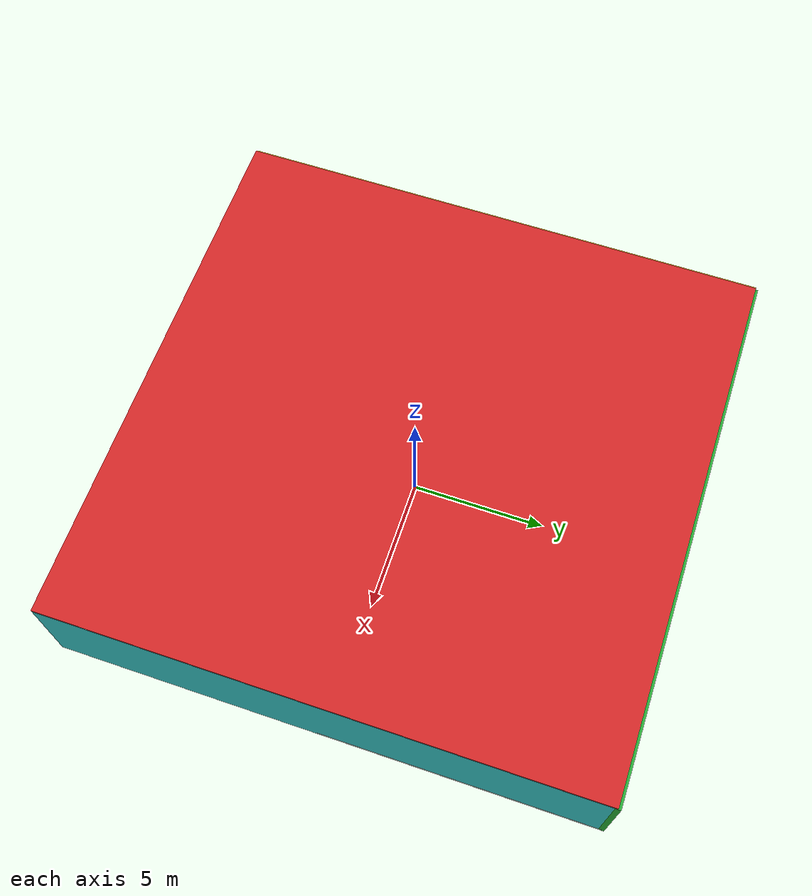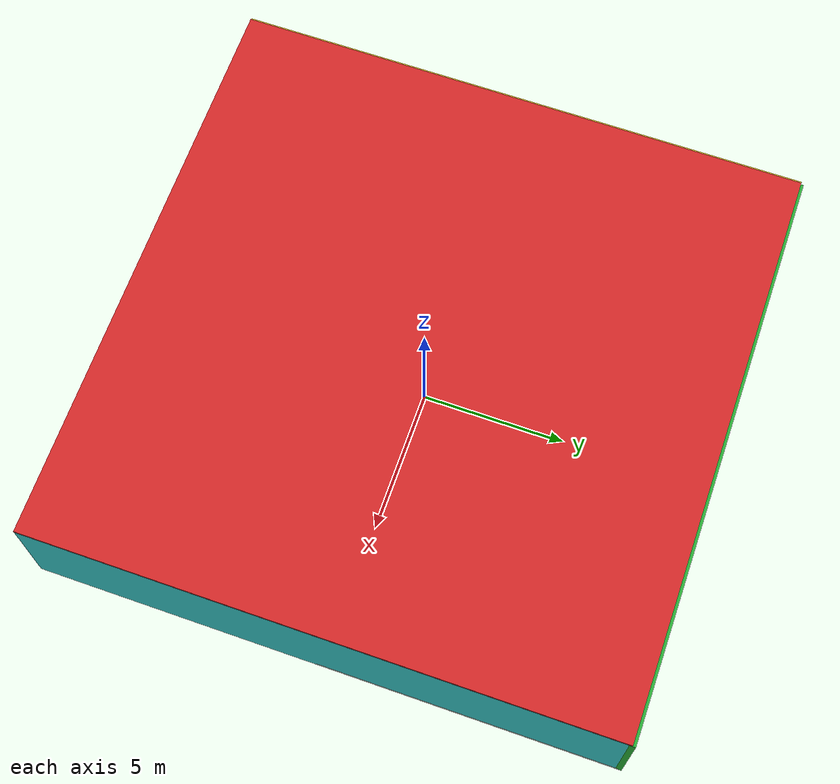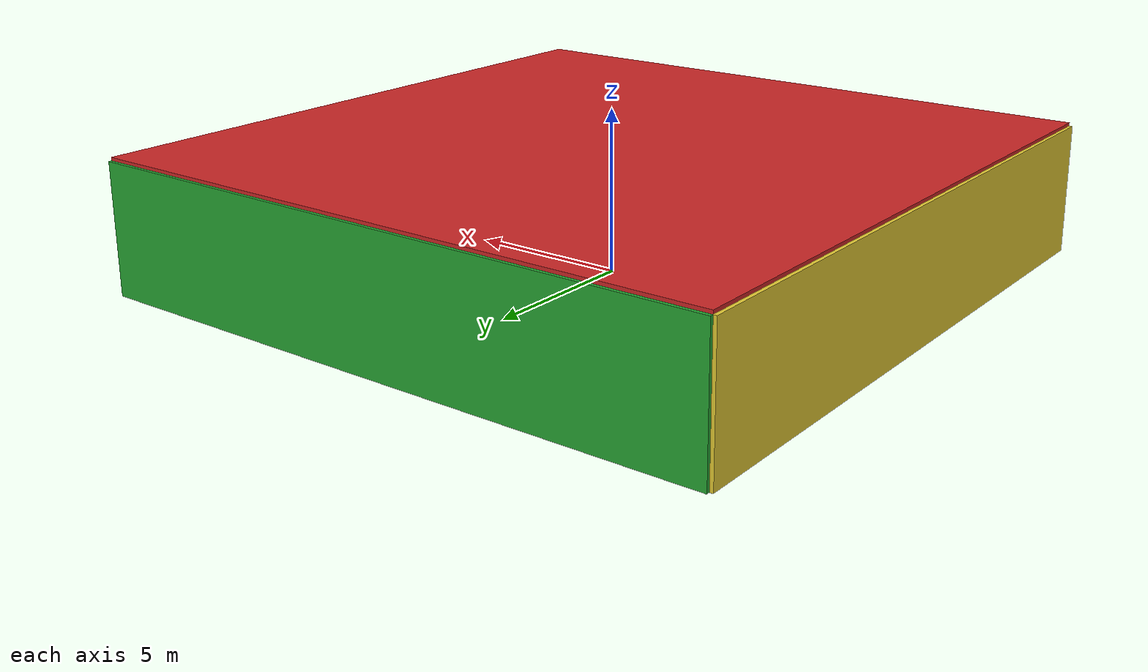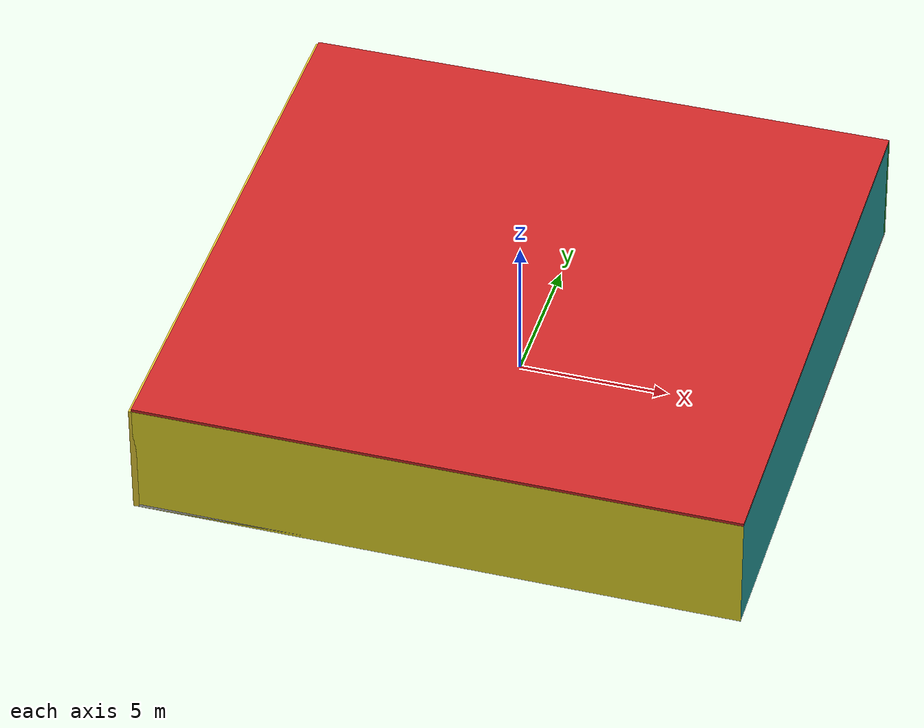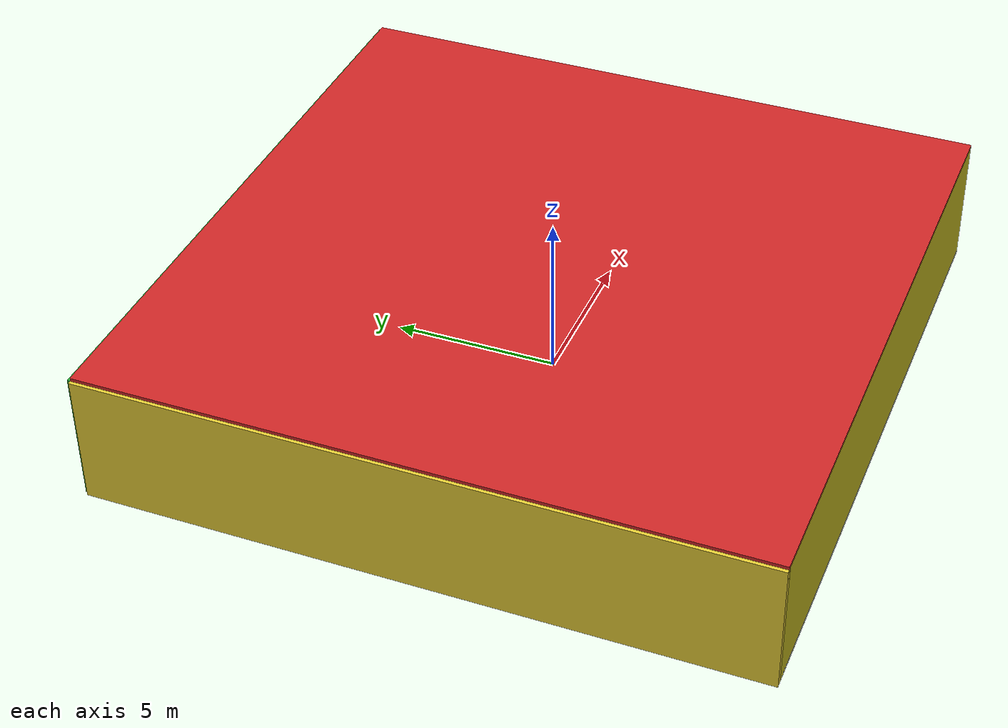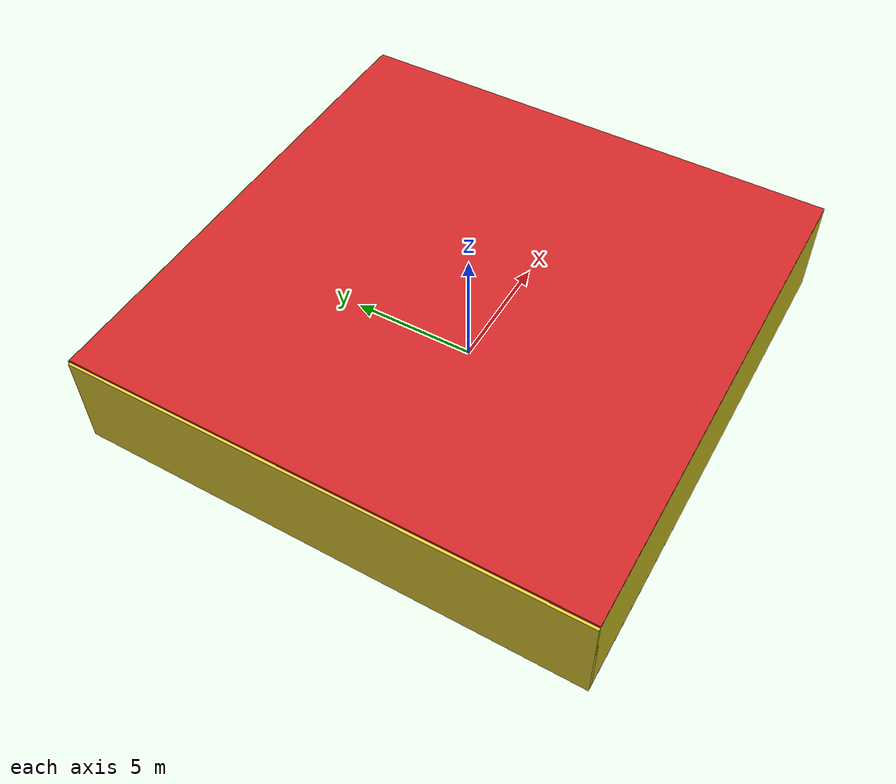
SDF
<sdf version="1.4">
 <world name="default">
  <physics type="ode">
   <max_step_size>0.001</max_step_size>
   <real_time_factor>1</real_time_factor>
   <real_time_update_rate>1000</real_time_update_rate>
   <gravity>0 0 -9.8</gravity>
  </physics>
  <scene><ambient>0.4 0.4 0.4 1</ambient><background>0.7 0.7 0.7 1</background><shadows>1</shadows></scene>
  <model name="Surrounding">
   <static>1</static>
   <link name="Ceiling">
    <collision name="Ceiling_Collision"><geometry><box><size>20 20 0.1</size></box></geometry></collision>
    <visual name="Ceiling_Visual">
     <geometry><box><size>20 20 0.1</size></box></geometry>
     <material>
      <script><uri>file://media/materials/scripts/gazebo.material</uri><name>Gazebo/RedBright</name></script>
     </material>
    </visual>
    <pose>0 0 4.05 0 0 0</pose>
   </link>
   <link name="Wall_South">
    <collision name="Wall_South_Collision">
     <geometry><box><size>20 0 4</size></box></geometry>
     <pose>0 0 2 0 -0 0</pose>
    </collision>
    <visual name="Wall_South_Visual">
     <pose>0 0 2 0 -0 0</pose>
     <geometry><box><size>20 0 4</size></box></geometry>
     <material>
      <script><uri>file://media/materials/scripts/gazebo.material</uri><name>Gazebo/YellowGlow</name></script>
     </material>
    </visual>
    <velocity_decay><linear>0</linear><angular>0</angular></velocity_decay>
    <pose>0 -10 0 0 -0 0</pose>
   </link>
   <link name="Wall_East">
    <collision name="Wall_21_Collision">
     <geometry><box><size>20 0 4</size></box></geometry>
     <pose>0 0 2 0 -0 0</pose>
    </collision>
    <visual name="Wall_21_Visual">
     <pose>0 0 2 0 -0 0</pose>
     <geometry><box><size>20 0 4</size></box></geometry>
     <material>
      <script>
       <uri>file://media/materials/scripts/gazebo.material</uri>
       <name>Gazebo/TurquoiseGlowOutline</name>
      </script>
     </material>
    </visual>
    <velocity_decay><linear>0</linear><angular>0</angular></velocity_decay>
    <pose>10 0 0 0 -0 1.5708</pose>
   </link>
   <link name="Wall_North">
    <collision name="Wall_22_Collision">
     <geometry><box><size>20 0.2 4</size></box></geometry>
     <pose>0 0 2 0 -0 0</pose>
    </collision>
    <visual name="Wall_22_Visual">
     <pose>0 0 2 0 -0 0</pose>
     <geometry><box><size>20 0.2 4</size></box></geometry>
     <material>
      <script><uri>file://media/materials/scripts/gazebo.material</uri><name>Gazebo/GreenGlow</name></script>
     </material>
    </visual>
    <velocity_decay><linear>0</linear><angular>0</angular></velocity_decay>
    <pose>0 10 0 0 -0 0</pose>
   </link>
   <link name="Wall_West">
    <collision name="Wall_23_Collision">
     <geometry><box><size>20 0.2 4</size></box></geometry>
     <pose>0 0 2 0 -0 0</pose>
    </collision>
    <visual name="Wall_23_Visual">
     <pose>0 0 2 0 -0 0</pose>
     <geometry><box><size>20 0.2 4</size></box></geometry>
     <material>
      <script><uri>file://media/materials/scripts/gazebo.material</uri><name>Gazebo/ZincYellow</name></script>
     </material>
    </visual>
    <velocity_decay><linear>0</linear><angular>0</angular></velocity_decay>
    <pose>-10 0 0 0 0 -1.5708</pose>
   </link>
   <link name="Ground_link">
    <collision name="collision">
     <pose>0 0 .05 0 -0 0</pose>
     <geometry><box><size>20 20 0.1</size></box></geometry>
    </collision>
    <visual name="visual">
     <pose>0 0 .05 0 -0 0</pose>
     <geometry><box><size>20 20 0.1</size></box></geometry>
     <material>
      <script><uri>file://media/materials/scripts/gazebo.material</uri><name>Gazebo/CeilingTiled</name></script>
     </material>
    </visual>
   </link>
   <static>1</static>
  </model>
  <spherical_coordinates>
   <surface_model>EARTH_WGS84</surface_model>
   <latitude_deg>0</latitude_deg>
   <longitude_deg>0</longitude_deg>
   <elevation>0</elevation>
   <heading_deg>0</heading_deg>
  </spherical_coordinates>
  <light name="lightball_0" type="diffuse">
   <diffuse>0.8 0.8 0.8 1</diffuse>
   <specular>0.2 0.2 0.2 1</specular>
   <attenuation>
    <range>100</range>
    <constant>0.7</constant>
    <linear>0.01</linear>
    <quadratic>0.001</quadratic>
   </attenuation>
   <direction>-0.5 0.1 -0.9</direction>
   <pose>8.88024452337 1.88795448479 2.39265578732 0 0 0</pose>
  </light>
  <light name="lightball_1" type="diffuse">
   <diffuse>0.8 0.8 0.8 1</diffuse>
   <specular>0.2 0.2 0.2 1</specular>
   <attenuation>
    <range>100</range>
    <constant>0.7</constant>
    <linear>0.01</linear>
    <quadratic>0.001</quadratic>
   </attenuation>
   <direction>-0.5 0.1 -0.9</direction>
   <pose>9.61584369636 8.09053197251 2.72835953635 0 0 0</pose>
  </light>
  <light name="lightball_2" type="diffuse">
   <diffuse>0.8 0.8 0.8 1</diffuse>
   <specular>0.2 0.2 0.2 1</specular>
   <attenuation>
    <range>100</range>
    <constant>0.7</constant>
    <linear>0.01</linear>
    <quadratic>0.001</quadratic>
   </attenuation>
   <direction>-0.5 0.1 -0.9</direction>
   <pose>-4.00501666634 0.703869233988 2.05144152462 0 0 0</pose>
  </light>
  <light name="lightball_3" type="diffuse">
   <diffuse>0.8 0.8 0.8 1</diffuse>
   <specular>0.2 0.2 0.2 1</specular>
   <attenuation>
    <range>100</range>
    <constant>0.7</constant>
    <linear>0.01</linear>
    <quadratic>0.001</quadratic>
   </attenuation>
   <direction>-0.5 0.1 -0.9</direction>
   <pose>-6.81965604919 -7.78637333184 1.56100032315 0 0 0</pose>
  </light>
  <light name="lightball_4" type="diffuse">
   <diffuse>0.8 0.8 0.8 1</diffuse>
   <specular>0.2 0.2 0.2 1</specular>
   <attenuation>
    <range>100</range>
    <constant>0.7</constant>
    <linear>0.01</linear>
    <quadratic>0.001</quadratic>
   </attenuation>
   <direction>-0.5 0.1 -0.9</direction>
   <pose>3.06915246463 -7.42477642773 2.84463827059 0 0 0</pose>
  </light>
  <light name="lightball_5" type="diffuse">
   <diffuse>0.8 0.8 0.8 1</diffuse>
   <specular>0.2 0.2 0.2 1</specular>
   <attenuation>
    <range>100</range>
    <constant>0.7</constant>
    <linear>0.01</linear>
    <quadratic>0.001</quadratic>
   </attenuation>
   <direction>-0.5 0.1 -0.9</direction>
   <pose>-5.69438122697 8.45867067328 2.17454068399 0 0 0</pose>
  </light>
  <light name="lightball_6" type="diffuse">
   <diffuse>0.8 0.8 0.8 1</diffuse>
   <specular>0.2 0.2 0.2 1</specular>
   <attenuation>
    <range>100</range>
    <constant>0.7</constant>
    <linear>0.01</linear>
    <quadratic>0.001</quadratic>
   </attenuation>
   <direction>-0.5 0.1 -0.9</direction>
   <pose>1.46943220548 6.40467224475 1.86830493621 0 0 0</pose>
  </light>
  <include>
   <uri>model://textured_shapes</uri>
   <pose>-4.5607429131 5.49437711645 0 0 0 1.23963770299</pose>
  </include>
  <include><uri>model://cabinet</uri><pose>4.4488021629 -4.10053381811 0 0 0 2.66696678689</pose></include>
  <include>
   <uri>model://textured_shapes</uri>
   <pose>5.52110189831 3.9796394863 0 0 0 0.836259127296</pose>
  </include>
  <include>
   <uri>model://robocup_3Dsim_goal</uri>
   <pose>4.04649044575 7.05992649139 0 0 0 1.10381612073</pose>
  </include>
  <include><uri>model://table</uri><pose>7.49608017499 4.58417848881 0 0 0 2.25553514125</pose></include>
 </world>
</sdf>

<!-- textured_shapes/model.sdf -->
<sdf version="1.6">
  <model name="textured_shapes">
    <pose>0 0 0.5 0 0 0</pose>
    <link name="box">
      <pose>0 -1.5 0 0 0 0</pose>
      <collision name="collision">
        <geometry>
          <box>
            <size>1 1 1</size>
          </box>
        </geometry>
      </collision>
      <visual name="visual">
        <geometry>
          <box>
            <size>1 1 1</size>
          </box>
        </geometry>
        <material>
          <script>
            <uri>model://../model_source/models/textured_shapes/materials/scripts</uri>
            <uri>model://../model_source/models/textured_shapes/materials/textures</uri>
            <name>TexturedShape/Squares</name>
          </script>
        </material>
      </visual>
    </link>
    <link name="sphere">
      <collision name="collision">
        <geometry>
          <sphere>
            <radius>0.5</radius>
          </sphere>
        </geometry>
      </collision>
      <visual name="visual">
        <geometry>
          <sphere>
            <radius>0.5</radius>
          </sphere>
        </geometry>
        <material>
          <script>
            <uri>model://../model_source/models/textured_shapes/materials/scripts</uri>
            <uri>model://../model_source/models/textured_shapes/materials/textures</uri>
            <name>TexturedShape/Squares</name>
          </script>
        </material>
      </visual>
    </link>
    <link name="cylinder">
      <pose>0 1.5 0 0 0 0</pose>
      <collision name="collision">
        <geometry>
          <cylinder>
            <radius>0.5</radius>
            <length>1</length>
          </cylinder>
        </geometry>
      </collision>
      <visual name="visual">
        <geometry>
          <cylinder>
            <radius>0.5</radius>
            <length>1</length>
          </cylinder>
        </geometry>
        <material>
          <script>
            <uri>model://../model_source/models/textured_shapes/materials/scripts</uri>
            <uri>model://../model_source/models/textured_shapes/materials/textures</uri>
            <name>TexturedShape/Squares</name>
          </script>
        </material>
      </visual>
    </link>
  </model>
</sdf>

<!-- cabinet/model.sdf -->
<sdf version="1.5">
  <model name="cabinet">
    <static>true</static>
    <link name="cabinet_bottom_plate">
      <inertial>
        <pose>0 0 -1 0 0 0</pose>
        <inertia>
          <ixx>2.050000</ixx>
          <ixy>0</ixy>
          <ixz>0</ixz>
          <iyy>2.050000</iyy>
          <iyz>0</iyz>
          <izz>2.050000</izz>
        </inertia>
        <mass>25.000000</mass>
      </inertial>
      <collision name="cabinet_bottom_plate_geom">
        <pose>0 0 0.010000 0 0 0</pose>
        <geometry>
          <box>
            <size>0.450000 0.450000 0.020000</size>
          </box>
        </geometry>
      </collision>
      <visual name="cabinet_bottom_plate_geom_visual">
        <pose>0 0 0.010000 0 0 0</pose>
        <geometry>
          <box>
            <size>0.450000 0.450000 0.020000</size>
          </box>
        </geometry>
        <material>
          <script>
            <uri>model://media/materials/scripts/gazebo.material</uri>
            <name>Gazebo/Wood</name>
          </script>
        </material>
      </visual>
      <collision name="cabinet_bottom_plate_geom_cabinet_back_plate">
        <pose>0.235000 0 0.510000 0 0 0</pose>
        <geometry>
          <box>
            <size>0.020000 0.450000 1.020000</size>
          </box>
        </geometry>
      </collision>
      <visual name="cabinet_bottom_plate_geom_cabinet_back_plate_visual">
        <pose>0.235000 0 0.510000 0 0 0</pose>
        <geometry>
          <box>
            <size>0.020000 0.450000 1.020000</size>
          </box>
        </geometry>
        <material>
          <script>
            <uri>model://media/materials/scripts/gazebo.material</uri>
            <name>Gazebo/Wood</name>
          </script>
        </material>
      </visual>
      <collision name="cabinet_bottom_plate_geom_cabinet_left_plate">
        <pose>0 0.235000 0.510000 0 0 0</pose>
        <geometry>
          <box>
            <size>0.450000 0.020000 1.020000</size>
          </box>
        </geometry>
      </collision>
      <visual name="cabinet_bottom_plate_geom_cabinet_left_plate_visual">
        <pose>0 0.235000 0.510000 0 0 0</pose>
        <geometry>
          <box>
            <size>0.450000 0.020000 1.020000</size>
          </box>
        </geometry>
        <material>
          <script>
            <uri>model://media/materials/scripts/gazebo.material</uri>
            <name>Gazebo/Wood</name>
          </script>
        </material>
      </visual>
      <collision name="cabinet_bottom_plate_geom_cabinet_middle_plate">
        <pose>0 0 0.510000 0 0 0</pose>
        <geometry>
          <box>
            <size>0.450000 0.450000 0.020000</size>
          </box>
        </geometry>
      </collision>
      <visual name="cabinet_bottom_plate_geom_cabinet_middle_plate_visual">
        <pose>0 0 0.510000 0 0 0</pose>
        <geometry>
          <box>
            <size>0.450000 0.450000 0.020000</size>
          </box>
        </geometry>
        <material>
          <script>
            <uri>model://media/materials/scripts/gazebo.material</uri>
            <name>Gazebo/Wood</name>
          </script>
        </material>
      </visual>
      <collision name="cabinet_bottom_plate_geom_cabinet_right_plate">
        <pose>0 -0.235000 0.510000 0 0 0</pose>
        <geometry>
          <box>
            <size>0.450000 0.020000 1.020000</size>
          </box>
        </geometry>
      </collision>
      <visual name="cabinet_bottom_plate_geom_cabinet_right_plate_visual">
        <pose>0 -0.235000 0.510000 0 0 0</pose>
        <geometry>
          <box>
            <size>0.450000 0.020000 1.020000</size>
          </box>
        </geometry>
        <material>
          <script>
            <uri>model://media/materials/scripts/gazebo.material</uri>
            <name>Gazebo/Wood</name>
          </script>
        </material>
      </visual>
      <collision name="cabinet_bottom_plate_geom_cabinet_top_plate">
        <pose>0 0 1.010000 0 0 0</pose>
        <geometry>
          <box>
            <size>0.450000 0.450000 0.020000</size>
          </box>
        </geometry>
      </collision>
      <visual name="cabinet_bottom_plate_geom_cabinet_top_plate_visual">
        <pose>0 0 1.010000 0 0 0</pose>
        <geometry>
          <box>
            <size>0.450000 0.450000 0.020000</size>
          </box>
        </geometry>
        <material>
          <script>
            <uri>model://media/materials/scripts/gazebo.material</uri>
            <name>Gazebo/Wood</name>
          </script>
        </material>
      </visual>
    </link>
  </model>
</sdf>

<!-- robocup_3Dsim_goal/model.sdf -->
<sdf version="1.5">
  <model name="robocup_3d_goal">
    <static>true</static>
    <link name="left_post">
      <pose>0 1.05 0.45 0 0 0</pose>
      <collision name="collision">
        <geometry>
          <cylinder>
            <radius>0.05</radius>
            <length>0.9</length>
          </cylinder>
        </geometry>
      </collision>
      <visual name="visual">
        <geometry>
          <cylinder>
            <radius>0.05</radius>
            <length>0.9</length>
          </cylinder>
        </geometry>
        <material>
          <script>
            <uri>file://media/materials/scripts/gazebo.material</uri>
            <name>Gazebo/ZincYellow</name>
          </script>
        </material>
      </visual>
    </link>
    <link name="left_support_horiz_lower">
      <pose>0.30 1.05 0.01 0 0 0</pose>
      <collision name="collision">
        <geometry>
          <box>
            <size>0.50 0.02 0.02</size>
          </box>
        </geometry>
      </collision>
      <visual name="visual">
        <geometry>
          <box>
            <size>0.50 0.02 0.02</size>
          </box>
        </geometry>
        <material>
          <script>
            <uri>file://media/materials/scripts/gazebo.material</uri>
            <name>Gazebo/White</name>
          </script>
        </material>
      </visual>
    </link>
    <link name="left_support_horiz_upper">
      <pose>0.30 1.05 0.79 0 0 0</pose>
      <collision name="collision">
        <geometry>
          <box>
            <size>0.50 0.02 0.02</size>
          </box>
        </geometry>
      </collision>
      <visual name="visual">
        <geometry>
          <box>
            <size>0.50 0.02 0.02</size>
          </box>
        </geometry>
        <material>
          <script>
            <uri>file://media/materials/scripts/gazebo.material</uri>
            <name>Gazebo/White</name>
          </script>
        </material>
      </visual>
    </link>
    <link name="left_support_vertical">
      <pose>0.56 1.05 0.4 0 1.5708 0</pose>
      <collision name="collision">
        <geometry>
          <box>
            <size>0.80 0.02 0.02</size>
          </box>
        </geometry>
      </collision>
      <visual name="visual">
        <geometry>
          <box>
            <size>0.80 0.02 0.02</size>
          </box>
        </geometry>
        <material>
          <script>
            <uri>file://media/materials/scripts/gazebo.material</uri>
            <name>Gazebo/White</name>
          </script>
        </material>
      </visual>
    </link>
    <link name="right_support_horiz_lower">
      <pose>0.30 -1.05 0.01 0 0 0</pose>
      <collision name="collision">
        <geometry>
          <box>
            <size>0.50 0.02 0.02</size>
          </box>
        </geometry>
      </collision>
      <visual name="visual">
        <geometry>
          <box>
            <size>0.50 0.02 0.02</size>
          </box>
        </geometry>
        <material>
          <script>
            <uri>file://media/materials/scripts/gazebo.material</uri>
            <name>Gazebo/White</name>
          </script>
        </material>
      </visual>
    </link>
    <link name="right_support_horiz_upper">
      <pose>0.30 -1.05 0.79 0 0 0</pose>
      <collision name="collision">
        <geometry>
          <box>
            <size>0.50 0.02 0.02</size>
          </box>
        </geometry>
      </collision>
      <visual name="visual">
        <geometry>
          <box>
            <size>0.50 0.02 0.02</size>
          </box>
        </geometry>
        <material>
          <script>
            <uri>file://media/materials/scripts/gazebo.material</uri>
            <name>Gazebo/White</name>
          </script>
        </material>
      </visual>
    </link>
    <link name="right_support_vertical">
      <pose>0.56 -1.05 0.4 0 1.5708 0</pose>
      <collision name="collision">
        <geometry>
          <box>
            <size>0.80 0.02 0.02</size>
          </box>
        </geometry>
      </collision>
      <visual name="visual">
        <geometry>
          <box>
            <size>0.80 0.02 0.02</size>
          </box>
        </geometry>
        <material>
          <script>
            <uri>file://media/materials/scripts/gazebo.material</uri>
            <name>Gazebo/White</name>
          </script>
        </material>
      </visual>
    </link>
    <link name="center_support_horiz_lower">
      <pose>0.56 0 0.01 0 1.5708 0</pose>
      <collision name="collision">
        <geometry>
          <box>
            <size>0.02 2.08 0.02</size>
          </box>
        </geometry>
      </collision>
      <visual name="visual">
        <geometry>
          <box>
            <size>0.02 2.08 0.02</size>
          </box>
        </geometry>
        <material>
          <script>
            <uri>file://media/materials/scripts/gazebo.material</uri>
            <name>Gazebo/White</name>
          </script>
        </material>
      </visual>
    </link>
    <link name="center_support_horiz_upper">
      <pose>0.56 0 0.79 0 1.5708 0</pose>
      <collision name="collision">
        <geometry>
          <box>
            <size>0.02 2.08 0.02</size>
          </box>
        </geometry>
      </collision>
      <visual name="visual">
        <geometry>
          <box>
            <size>0.02 2.08 0.02</size>
          </box>
        </geometry>
        <material>
          <script>
            <uri>file://media/materials/scripts/gazebo.material</uri>
            <name>Gazebo/White</name>
          </script>
        </material>
      </visual>
    </link>
    <link name="right_post">
      <pose>0 -1.05 0.45 0 0 0</pose>
      <collision name="collision">
        <geometry>
          <cylinder>
            <radius>0.05</radius>
            <length>0.9</length>
          </cylinder>
        </geometry>
      </collision>
      <visual name="visual">
        <geometry>
          <cylinder>
            <radius>0.05</radius>
            <length>0.9</length>
          </cylinder>
        </geometry>
        <material>
          <script>
            <uri>file://media/materials/scripts/gazebo.material</uri>
            <name>Gazebo/ZincYellow</name>
          </script>
        </material>
      </visual>
    </link>
    <link name="crossbar">
      <pose>0 0 0.85 1.57 1.57 0</pose>
      <collision name="collision">
        <geometry>
          <cylinder>
            <radius>0.05</radius>
            <length>2.0</length>
          </cylinder>
        </geometry>
      </collision>
      <visual name="visual">
        <geometry>
          <cylinder>
            <radius>0.05</radius>
            <length>2.0</length>
          </cylinder>
        </geometry>
        <material>
          <script>
            <uri>file://media/materials/scripts/gazebo.material</uri>
            <name>Gazebo/ZincYellow</name>
          </script>
        </material>
      </visual>
    </link>
    <link name="center_net">
      <pose>0.56 0 0.40 0 0 0</pose>
      <collision name="collision">
        <geometry>
          <box>
            <size>0.01 2.1 0.80</size>
          </box>
        </geometry>
      </collision>
      <visual name="visual">
        <geometry>
          <box>
            <size>0.01 2.1 0.80</size>
          </box>
        </geometry>
        <material>
          <script>
            <uri>model://../model_source/models/robocup09_spl_field/materials/scripts/</uri>
            <uri>model://../model_source/models/robocup09_spl_field/materials/textures/</uri>
            <name>RoboCup/Net</name>
          </script>
        </material>
      </visual>
    </link>
    <link name="left_net">
      <pose>0.30 1.05 0.40 0 0 0</pose>
      <collision name="collision">
        <geometry>
          <box>
            <size>0.50 0.01 0.76</size>
          </box>
        </geometry>
      </collision>
      <visual name="visual">
        <geometry>
          <box>
            <size>0.50 0.01 0.76</size>
          </box>
        </geometry>
        <material>
          <script>
            <uri>model://../model_source/models/robocup09_spl_field/materials/scripts/</uri>
            <uri>model://../model_source/models/robocup09_spl_field/materials/textures/</uri>
            <name>RoboCup/Net</name>
          </script>
        </material>
      </visual>
    </link>
    <link name="right_net">
      <pose>0.30 -1.05 0.40 0 0 0</pose>
      <collision name="collision">
        <geometry>
          <box>
            <size>0.50 0.01 0.76</size>
          </box>
        </geometry>
      </collision>
      <visual name="visual">
        <geometry>
          <box>
            <size>0.50 0.01 0.76</size>
          </box>
        </geometry>
        <material>
          <script>
            <uri>model://../model_source/models/robocup09_spl_field/materials/scripts/</uri>
            <uri>model://../model_source/models/robocup09_spl_field/materials/textures/</uri>
            <name>RoboCup/Net</name>
          </script>
        </material>
      </visual>
    </link>
  </model>
</sdf>

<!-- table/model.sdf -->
<sdf version="1.5">
  <model name="table">
    <static>true</static>
    <link name="link">
      <collision name="surface">
        <pose>0 0 1.0 0 0 0</pose>
        <geometry>
          <box>
            <size>1.5 0.8 0.03</size>
          </box>
        </geometry>
        <surface>
          <friction>
            <ode>
              <mu>0.6</mu>
              <mu2>0.6</mu2>
            </ode>
          </friction>
        </surface>
      </collision>
      <visual name="visual1">
        <pose>0 0 1.0 0 0 0</pose>
        <geometry>
          <box>
            <size>1.5 0.8 0.03</size>
          </box>
        </geometry>
        <material>
          <script>
            <uri>model://media/materials/scripts/gazebo.material</uri>
            <name>Gazebo/Wood</name>
          </script>
        </material>
      </visual>
      <collision name="front_left_leg">
        <pose>0.68 0.38 0.5 0 0 0</pose>
        <geometry>
          <cylinder>
            <radius>0.02</radius>
            <length>1.0</length>
          </cylinder>
        </geometry>
      </collision>
      <visual name="front_left_leg">
        <pose>0.68 0.38 0.5 0 0 0</pose>
        <geometry>
          <cylinder>
            <radius>0.02</radius>
            <length>1.0</length>
          </cylinder>
        </geometry>
        <material>
          <script>
            <uri>model://media/materials/scripts/gazebo.material</uri>
            <name>Gazebo/Grey</name>
          </script>
        </material>
      </visual>
      <collision name="front_right_leg">
        <pose>0.68 -0.38 0.5 0 0 0</pose>
        <geometry>
          <cylinder>
            <radius>0.02</radius>
            <length>1.0</length>
          </cylinder>
        </geometry>
      </collision>
      <visual name="front_right_leg">
        <pose>0.68 -0.38 0.5 0 0 0</pose>
        <geometry>
          <cylinder>
            <radius>0.02</radius>
            <length>1.0</length>
          </cylinder>
        </geometry>
        <material>
          <script>
            <uri>model://media/materials/scripts/gazebo.material</uri>
            <name>Gazebo/Grey</name>
          </script>
        </material>
      </visual>
      <collision name="back_right_leg">
        <pose>-0.68 -0.38 0.5 0 0 0</pose>
        <geometry>
          <cylinder>
            <radius>0.02</radius>
            <length>1.0</length>
          </cylinder>
        </geometry>
      </collision>
      <visual name="back_right_leg">
        <pose>-0.68 -0.38 0.5 0 0 0</pose>
        <geometry>
          <cylinder>
            <radius>0.02</radius>
            <length>1.0</length>
          </cylinder>
        </geometry>
        <material>
          <script>
            <uri>model://media/materials/scripts/gazebo.material</uri>
            <name>Gazebo/Grey</name>
          </script>
        </material>
      </visual>
      <collision name="back_left_leg">
        <pose>-0.68 0.38 0.5 0 0 0</pose>
        <geometry>
          <cylinder>
            <radius>0.02</radius>
            <length>1.0</length>
          </cylinder>
        </geometry>
      </collision>
      <visual name="back_left_leg">
        <pose>-0.68 0.38 0.5 0 0 0</pose>
        <geometry>
          <cylinder>
            <radius>0.02</radius>
            <length>1.0</length>
          </cylinder>
        </geometry>
        <material>
          <script>
            <uri>model://media/materials/scripts/gazebo.material</uri>
            <name>Gazebo/Grey</name>
          </script>
        </material>
      </visual>
    </link>
  </model>
</sdf>
